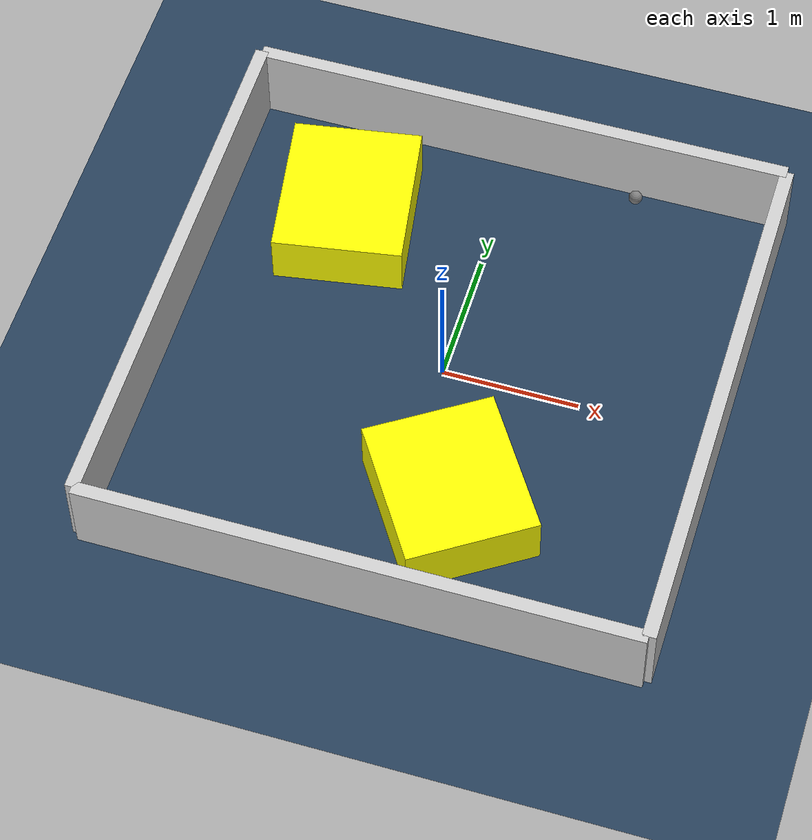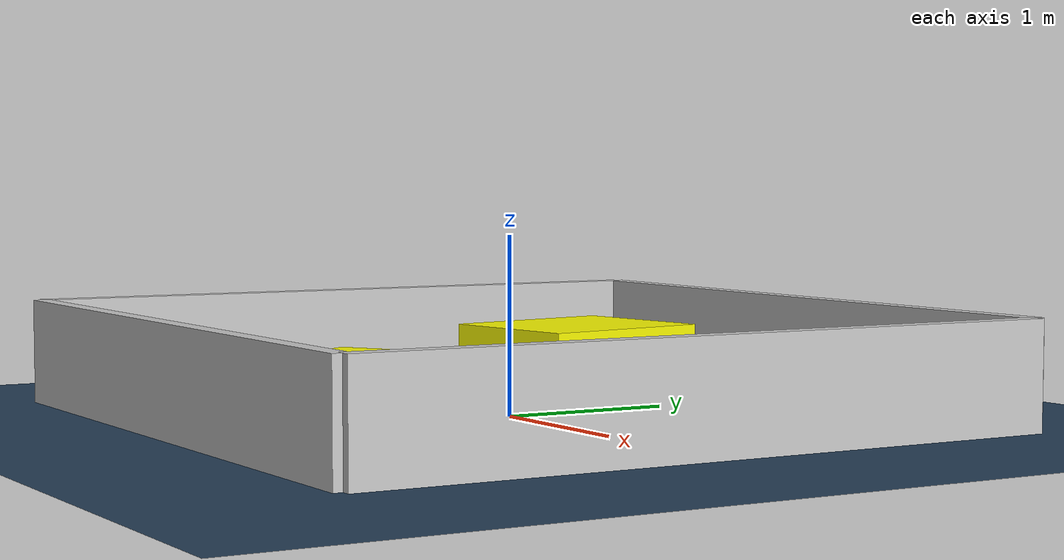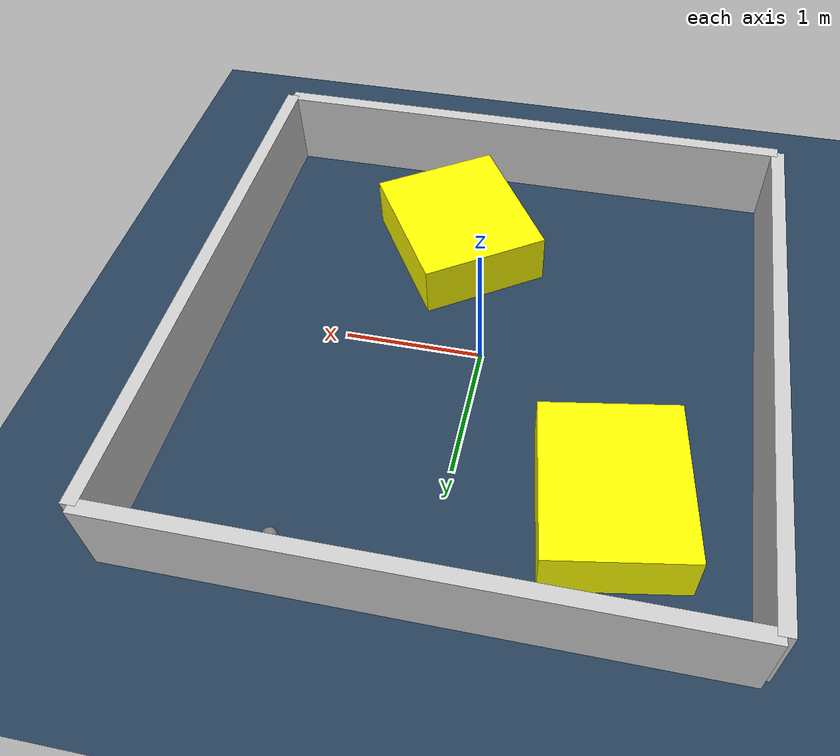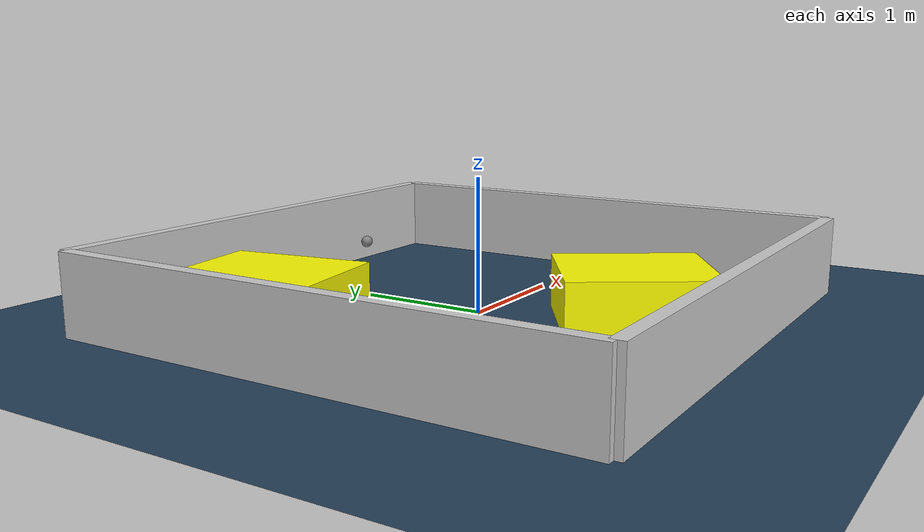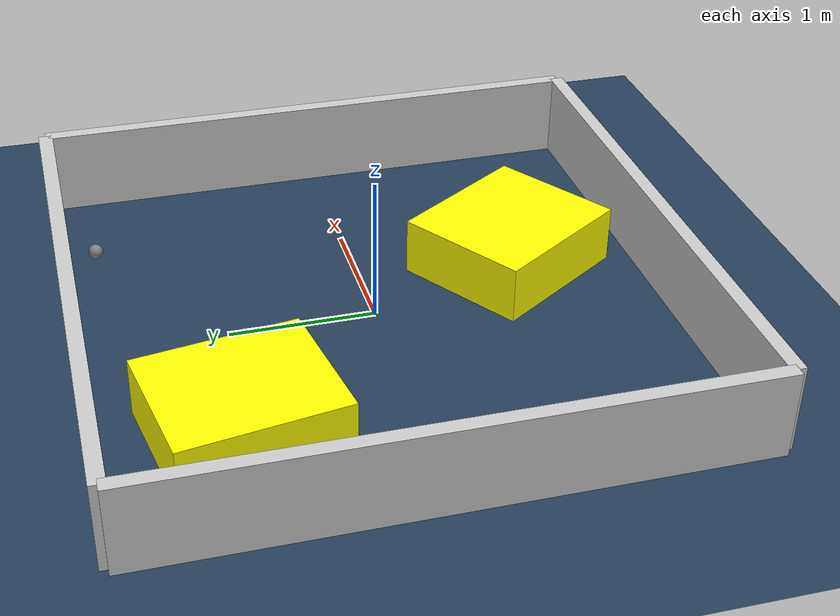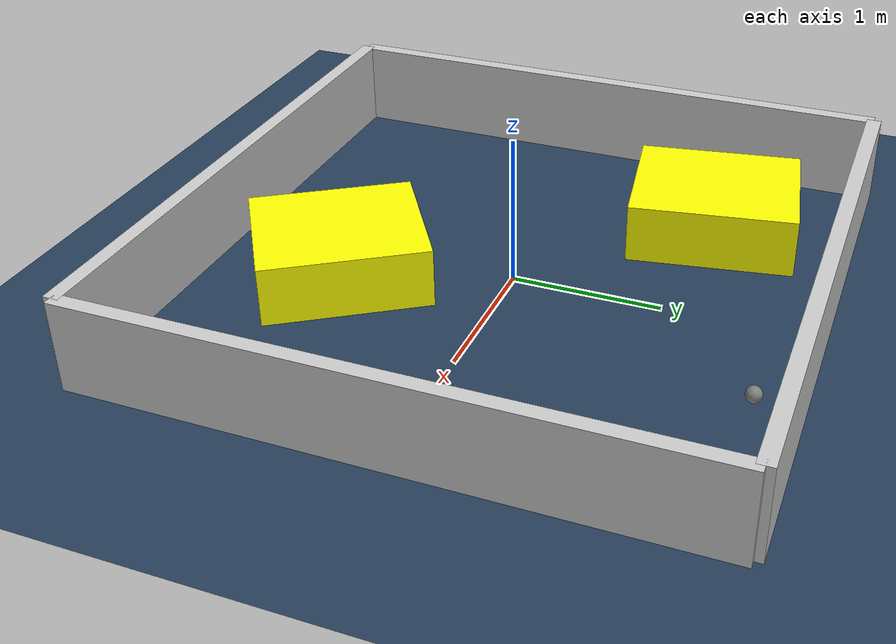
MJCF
<?xml version="1.0" ?>
<mujoco model="generated_environment">
  <option timestep="0.01" integrator="RK4" cone="elliptic"/>
  <default>
    <geom density="1"/>
  </default>
  <asset>
    <texture builtin="gradient" height="3072" rgb1="0.3 0.5 0.7" rgb2="0 0 0" type="skybox" width="512"/>
    <texture builtin="checker" height="300" mark="edge" markrgb="0.8 0.8 0.8" name="groundplane" rgb1="0.2 0.3 0.4" rgb2="0.1 0.2 0.3" type="2d" width="300"/>
    <material name="groundplane" reflectance="0.2" texrepeat="5 5" texture="groundplane" texuniform="true"/>
    <material name="robot" rgba="0.0 1.0 0.0 1"/>
  </asset>
  <worldbody>
    <light dir="0 0 -1" directional="true" pos="0 0 1.5"/>
    <geom condim="4" friction="1.0 0.005 0.001" material="groundplane" name="floor" size="0 0 0.05" type="plane"/>
    <body name="walls">
      <geom name="wall_1" condim="4" pos="-2.0 0.0 0.3" rgba="0.800000011920929 0.800000011920929 0.800000011920929 1.0" size="0.05 2.0 0.3" type="box"/>
      <geom name="wall_2" condim="4" pos="2.0 0.0 0.3" rgba="0.800000011920929 0.800000011920929 0.800000011920929 1.0" size="0.05 2.0 0.3" type="box"/>
      <geom name="wall_3" condim="4" pos="0.0 -2.0 0.3" rgba="0.800000011920929 0.800000011920929 0.800000011920929 1.0" size="2.0 0.05 0.3" type="box"/>
      <geom name="wall_4" condim="4" pos="0.0 2.0 0.3" rgba="0.800000011920929 0.800000011920929 0.800000011920929 1.0" size="2.0 0.05 0.3" type="box"/>
    </body>
    <body name="robot">
      <joint name="joint_x" type="slide" pos="0 0 0" axis="1 0 0"/>
      <joint name="joint_y" type="slide" pos="0 0 0" axis="0 1 0"/>
      <geom name="robot" type="sphere" pos="0.9489086137235483 1.7694656116197716 0.2" size="0.05" mass="5." friction="1.0 0.005 0.0001" condim="4"/>
      <site name="sensor_ball"/>
    </body>
    <body name="obstacle_1_movable">
      <geom name="obstacle_1_movable" condim="4" pos="-1.0503209856066098 1.0935962789023224 0.2" euler="0 0 9.317499362966025" friction="1.0 0.005 0.001" rgba="1 1 0 1" size="0.4735474329519126 0.5568511128854872 0.2" type="box" mass="0.1"/>
      <joint type="free"/>
    </body>
    <body name="obstacle_2_movable">
      <geom name="obstacle_2_movable" condim="4" pos="0.37619513119140247 -1.0689056249148725 0.2" euler="0 0 33.25169018775104" friction="1.0 0.005 0.001" rgba="1 1 0 1" size="0.47622052500297585 0.5456879147347375 0.2" type="box" mass="0.1"/>
      <joint type="free"/>
    </body>
  </worldbody>
  <actuator>
    <motor name="actuator_x" joint="joint_x" gear="1" ctrlrange="-1 1"/>
    <motor name="actuator_y" joint="joint_y" gear="1" ctrlrange="-1 1"/>
  </actuator>
</mujoco>
